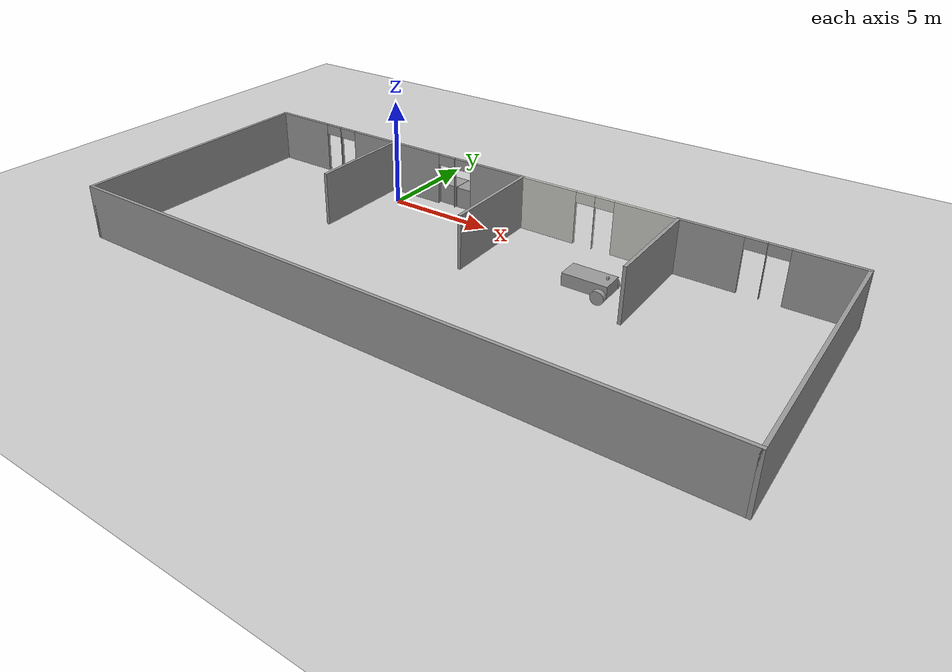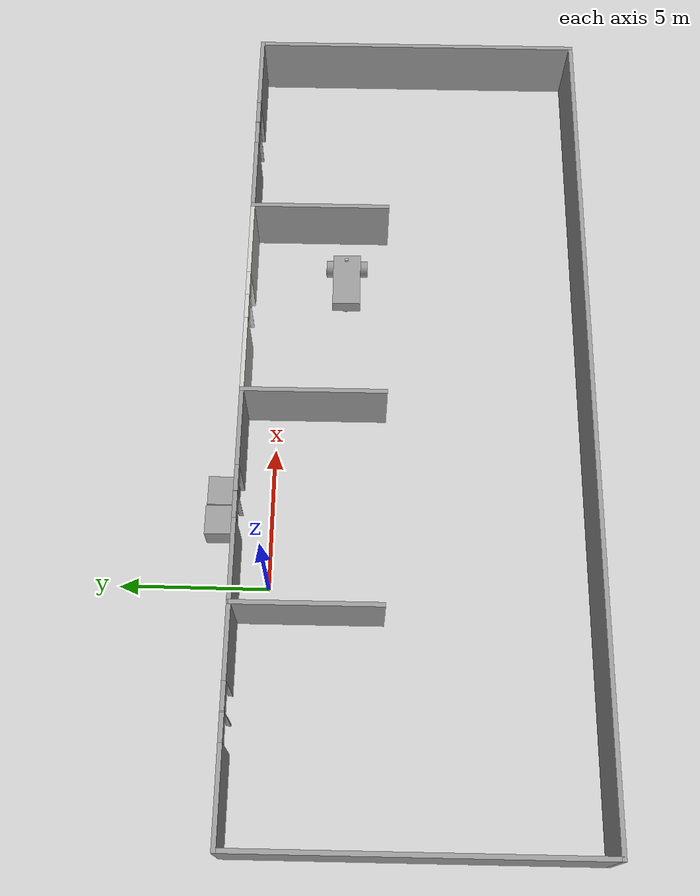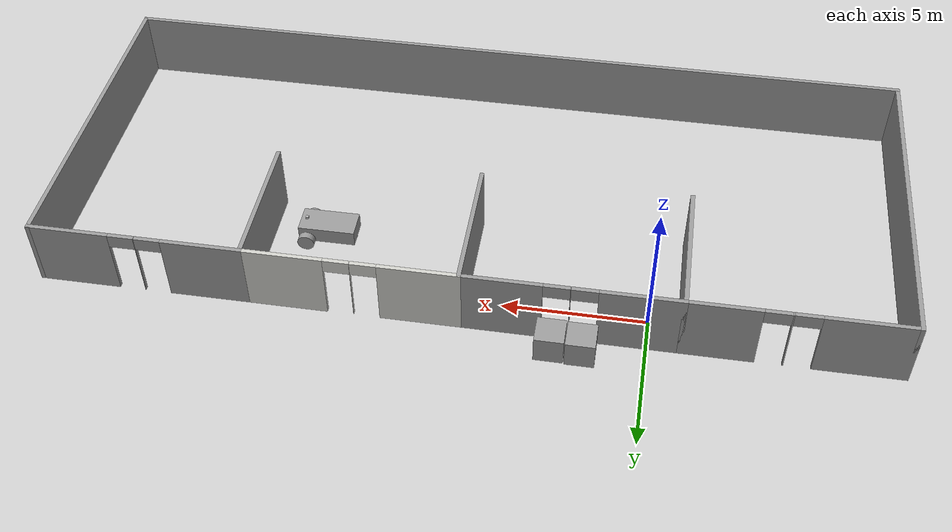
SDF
<sdf version="1.7">
 <world name="default">
  <model name="ground_plane">
   <static>1</static>
   <link name="link">
    <collision name="collision">
     <geometry><plane><normal>0 0 1</normal><size>100 100</size></plane></geometry>
     <surface><friction><ode><mu>100</mu><mu2>50</mu2></ode></friction></surface>
    </collision>
    <visual name="visual">
     <cast_shadows>0</cast_shadows>
     <geometry><plane><normal>0 0 1</normal><size>100 100</size></plane></geometry>
     <material>
      <script><uri>file://media/materials/scripts/gazebo.material</uri><name>Gazebo/Grey</name></script>
     </material>
    </visual>
   </link>
  </model>
  <model name="gf_simulation">
   <pose>6.27403 -4.82777 0 0 0 -3.13859</pose>
   <link name="Wall_1">
    <pose>-3.675 -5.925 0 0 -0 0</pose>
    <visual name="Wall_1_Visual_0">
     <pose>-2.30795 0 1.25 0 -0 0</pose>
     <geometry><box><size>2.8841 0.15 2.5</size></box></geometry>
     <material>
      <script><uri>file://media/materials/scripts/gazebo.material</uri><name>Gazebo/CeilingTiled</name></script>
      <ambient>1 1 1 1</ambient>
     </material>
     <meta><layer>0</layer></meta>
    </visual>
    <collision name="Wall_1_Collision_0">
     <geometry><box><size>2.8841 0.15 2.5</size></box></geometry>
     <pose>-2.30795 0 1.25 0 -0 0</pose>
    </collision>
    <visual name="Wall_1_Visual_1">
     <pose>0.038466 0 1.25 0 -0 0</pose>
     <geometry><box><size>0.008729 0.15 2.5</size></box></geometry>
     <material>
      <script><uri>file://media/materials/scripts/gazebo.material</uri><name>Gazebo/CeilingTiled</name></script>
      <ambient>1 1 1 1</ambient>
     </material>
     <meta><layer>0</layer></meta>
    </visual>
    <collision name="Wall_1_Collision_1">
     <geometry><box><size>0.008729 0.15 2.5</size></box></geometry>
     <pose>0.038466 0 1.25 0 -0 0</pose>
    </collision>
    <visual name="Wall_1_Visual_2">
     <pose>2.34641 0 1.25 0 -0 0</pose>
     <geometry><box><size>2.80717 0.15 2.5</size></box></geometry>
     <material>
      <script><uri>file://media/materials/scripts/gazebo.material</uri><name>Gazebo/CeilingTiled</name></script>
      <ambient>1 1 1 1</ambient>
     </material>
     <meta><layer>0</layer></meta>
    </visual>
    <collision name="Wall_1_Collision_2">
     <geometry><box><size>2.80717 0.15 2.5</size></box></geometry>
     <pose>2.34641 0 1.25 0 -0 0</pose>
    </collision>
    <visual name="Wall_1_Visual_3">
     <pose>-0.415899 0 2.25 0 -0 0</pose>
     <geometry><box><size>0.9 0.15 0.5</size></box></geometry>
     <material>
      <script><uri>file://media/materials/scripts/gazebo.material</uri><name>Gazebo/CeilingTiled</name></script>
      <ambient>1 1 1 1</ambient>
     </material>
     <meta><layer>0</layer></meta>
    </visual>
    <collision name="Wall_1_Collision_3">
     <geometry><box><size>0.9 0.15 0.5</size></box></geometry>
     <pose>-0.415899 0 2.25 0 -0 0</pose>
    </collision>
    <visual name="Wall_1_Visual_4">
     <pose>0.49283 0 2.25 0 -0 0</pose>
     <geometry><box><size>0.9 0.15 0.5</size></box></geometry>
     <material>
      <script><uri>file://media/materials/scripts/gazebo.material</uri><name>Gazebo/CeilingTiled</name></script>
      <ambient>1 1 1 1</ambient>
     </material>
     <meta><layer>0</layer></meta>
    </visual>
    <collision name="Wall_1_Collision_4">
     <geometry><box><size>0.9 0.15 0.5</size></box></geometry>
     <pose>0.49283 0 2.25 0 -0 0</pose>
    </collision>
   </link>
   <link name="Wall_10">
    <pose>3.675 -5.925 0 0 -0 0</pose>
    <visual name="Wall_10_Visual_0">
     <pose>-2.33475 0 1.25 0 -0 0</pose>
     <geometry><box><size>2.83049 0.15 2.5</size></box></geometry>
     <material>
      <script><uri>file://media/materials/scripts/gazebo.material</uri><name>Gazebo/Grey</name></script>
      <ambient>1 1 1 1</ambient>
     </material>
     <meta><layer>0</layer></meta>
    </visual>
    <collision name="Wall_10_Collision_0">
     <geometry><box><size>2.83049 0.15 2.5</size></box></geometry>
     <pose>-2.33475 0 1.25 0 -0 0</pose>
    </collision>
    <visual name="Wall_10_Visual_1">
     <pose>-0.009967 0 1.25 0 -0 0</pose>
     <geometry><box><size>0.019079 0.15 2.5</size></box></geometry>
     <material>
      <script><uri>file://media/materials/scripts/gazebo.material</uri><name>Gazebo/Grey</name></script>
      <ambient>1 1 1 1</ambient>
     </material>
     <meta><layer>0</layer></meta>
    </visual>
    <collision name="Wall_10_Collision_1">
     <geometry><box><size>0.019079 0.15 2.5</size></box></geometry>
     <pose>-0.009967 0 1.25 0 -0 0</pose>
    </collision>
    <visual name="Wall_10_Visual_2">
     <pose>2.32479 0 1.25 0 -0 0</pose>
     <geometry><box><size>2.85043 0.15 2.5</size></box></geometry>
     <material>
      <script><uri>file://media/materials/scripts/gazebo.material</uri><name>Gazebo/Grey</name></script>
      <ambient>1 1 1 1</ambient>
     </material>
     <meta><layer>0</layer></meta>
    </visual>
    <collision name="Wall_10_Collision_2">
     <geometry><box><size>2.85043 0.15 2.5</size></box></geometry>
     <pose>2.32479 0 1.25 0 -0 0</pose>
    </collision>
    <visual name="Wall_10_Visual_3">
     <pose>-0.469506 0 2.25 0 -0 0</pose>
     <geometry><box><size>0.9 0.15 0.5</size></box></geometry>
     <material>
      <script><uri>file://media/materials/scripts/gazebo.material</uri><name>Gazebo/Grey</name></script>
      <ambient>1 1 1 1</ambient>
     </material>
     <meta><layer>0</layer></meta>
    </visual>
    <collision name="Wall_10_Collision_3">
     <geometry><box><size>0.9 0.15 0.5</size></box></geometry>
     <pose>-0.469506 0 2.25 0 -0 0</pose>
    </collision>
    <visual name="Wall_10_Visual_4">
     <pose>0.449573 0 2.25 0 -0 0</pose>
     <geometry><box><size>0.9 0.15 0.5</size></box></geometry>
     <material>
      <script><uri>file://media/materials/scripts/gazebo.material</uri><name>Gazebo/Grey</name></script>
      <ambient>1 1 1 1</ambient>
     </material>
     <meta><layer>0</layer></meta>
    </visual>
    <collision name="Wall_10_Collision_4">
     <geometry><box><size>0.9 0.15 0.5</size></box></geometry>
     <pose>0.449573 0 2.25 0 -0 0</pose>
    </collision>
   </link>
   <link name="Wall_13">
    <collision name="Wall_13_Collision">
     <geometry><box><size>5 0.15 2.5</size></box></geometry>
     <pose>0 0 1.25 0 -0 0</pose>
    </collision>
    <visual name="Wall_13_Visual">
     <pose>0 0 1.25 0 -0 0</pose>
     <geometry><box><size>5 0.15 2.5</size></box></geometry>
     <material>
      <script><uri>file://media/materials/scripts/gazebo.material</uri><name>Gazebo/Grey</name></script>
      <ambient>1 1 1 1</ambient>
     </material>
     <meta><layer>0</layer></meta>
    </visual>
    <pose>7.35 -3.5 0 0 -0 1.5708</pose>
   </link>
   <link name="Wall_16">
    <pose>11.025 -5.925 0 0 -0 0</pose>
    <visual name="Wall_16_Visual_0">
     <pose>-2.47856 0 1.25 0 -0 0</pose>
     <geometry><box><size>2.54289 0.15 2.5</size></box></geometry>
     <material>
      <script><uri>file://media/materials/scripts/gazebo.material</uri><name>Gazebo/Grey</name></script>
      <ambient>1 1 1 1</ambient>
     </material>
     <meta><layer>0</layer></meta>
    </visual>
    <collision name="Wall_16_Collision_0">
     <geometry><box><size>2.54289 0.15 2.5</size></box></geometry>
     <pose>-2.47856 0 1.25 0 -0 0</pose>
    </collision>
    <visual name="Wall_16_Visual_1">
     <pose>-0.285478 0 1.25 0 -0 0</pose>
     <geometry><box><size>0.043266 0.15 2.5</size></box></geometry>
     <material>
      <script><uri>file://media/materials/scripts/gazebo.material</uri><name>Gazebo/Grey</name></script>
      <ambient>1 1 1 1</ambient>
     </material>
     <meta><layer>0</layer></meta>
    </visual>
    <collision name="Wall_16_Collision_1">
     <geometry><box><size>0.043266 0.15 2.5</size></box></geometry>
     <pose>-0.285478 0 1.25 0 -0 0</pose>
    </collision>
    <visual name="Wall_16_Visual_2">
     <pose>2.19308 0 1.25 0 -0 0</pose>
     <geometry><box><size>3.11384 0.15 2.5</size></box></geometry>
     <material>
      <script><uri>file://media/materials/scripts/gazebo.material</uri><name>Gazebo/Grey</name></script>
      <ambient>1 1 1 1</ambient>
     </material>
     <meta><layer>0</layer></meta>
    </visual>
    <collision name="Wall_16_Collision_2">
     <geometry><box><size>3.11384 0.15 2.5</size></box></geometry>
     <pose>2.19308 0 1.25 0 -0 0</pose>
    </collision>
    <visual name="Wall_16_Visual_3">
     <pose>-0.757111 0 2.25 0 -0 0</pose>
     <geometry><box><size>0.9 0.15 0.5</size></box></geometry>
     <material>
      <script><uri>file://media/materials/scripts/gazebo.material</uri><name>Gazebo/Grey</name></script>
      <ambient>1 1 1 1</ambient>
     </material>
     <meta><layer>0</layer></meta>
    </visual>
    <collision name="Wall_16_Collision_3">
     <geometry><box><size>0.9 0.15 0.5</size></box></geometry>
     <pose>-0.757111 0 2.25 0 -0 0</pose>
    </collision>
    <visual name="Wall_16_Visual_4">
     <pose>0.186155 0 2.25 0 -0 0</pose>
     <geometry><box><size>0.9 0.15 0.5</size></box></geometry>
     <material>
      <script><uri>file://media/materials/scripts/gazebo.material</uri><name>Gazebo/Grey</name></script>
      <ambient>1 1 1 1</ambient>
     </material>
     <meta><layer>0</layer></meta>
    </visual>
    <collision name="Wall_16_Collision_4">
     <geometry><box><size>0.9 0.15 0.5</size></box></geometry>
     <pose>0.186155 0 2.25 0 -0 0</pose>
    </collision>
   </link>
   <link name="Wall_20">
    <collision name="Wall_20_Collision">
     <geometry><box><size>12 0.15 2.5</size></box></geometry>
     <pose>0 0 1.25 0 -0 0</pose>
    </collision>
    <visual name="Wall_20_Visual">
     <pose>0 0 1.25 0 -0 0</pose>
     <geometry><box><size>12 0.15 2.5</size></box></geometry>
     <material>
      <script><uri>file://media/materials/scripts/gazebo.material</uri><name>Gazebo/Grey</name></script>
      <ambient>1 1 1 1</ambient>
     </material>
     <meta><layer>0</layer></meta>
    </visual>
    <pose>14.7 0 0 0 -0 1.5708</pose>
   </link>
   <link name="Wall_22">
    <pose>-11.025 -5.925 0 0 -0 3.14159</pose>
    <visual name="Wall_22_Visual_0">
     <pose>-2.34634 0 1.25 0 -0 0</pose>
     <geometry><box><size>2.80732 0.15 2.5</size></box></geometry>
     <material>
      <script><uri>file://media/materials/scripts/gazebo.material</uri><name>Gazebo/Grey</name></script>
      <ambient>1 1 1 1</ambient>
     </material>
     <meta><layer>0</layer></meta>
    </visual>
    <collision name="Wall_22_Collision_0">
     <geometry><box><size>2.80732 0.15 2.5</size></box></geometry>
     <pose>-2.34634 0 1.25 0 -0 0</pose>
    </collision>
    <visual name="Wall_22_Visual_1">
     <pose>-0.033144 0 1.25 0 -0 0</pose>
     <geometry><box><size>0.019079 0.15 2.5</size></box></geometry>
     <material>
      <script><uri>file://media/materials/scripts/gazebo.material</uri><name>Gazebo/Grey</name></script>
      <ambient>1 1 1 1</ambient>
     </material>
     <meta><layer>0</layer></meta>
    </visual>
    <collision name="Wall_22_Collision_1">
     <geometry><box><size>0.019079 0.15 2.5</size></box></geometry>
     <pose>-0.033144 0 1.25 0 -0 0</pose>
    </collision>
    <visual name="Wall_22_Visual_2">
     <pose>2.3132 0 1.25 0 -0 0</pose>
     <geometry><box><size>2.8736 0.15 2.5</size></box></geometry>
     <material>
      <script><uri>file://media/materials/scripts/gazebo.material</uri><name>Gazebo/Grey</name></script>
      <ambient>1 1 1 1</ambient>
     </material>
     <meta><layer>0</layer></meta>
    </visual>
    <collision name="Wall_22_Collision_2">
     <geometry><box><size>2.8736 0.15 2.5</size></box></geometry>
     <pose>2.3132 0 1.25 0 -0 0</pose>
    </collision>
    <visual name="Wall_22_Visual_3">
     <pose>-0.492683 0 2.25 0 -0 0</pose>
     <geometry><box><size>0.9 0.15 0.5</size></box></geometry>
     <material>
      <script><uri>file://media/materials/scripts/gazebo.material</uri><name>Gazebo/Grey</name></script>
      <ambient>1 1 1 1</ambient>
     </material>
     <meta><layer>0</layer></meta>
    </visual>
    <collision name="Wall_22_Collision_3">
     <geometry><box><size>0.9 0.15 0.5</size></box></geometry>
     <pose>-0.492683 0 2.25 0 -0 0</pose>
    </collision>
    <visual name="Wall_22_Visual_4">
     <pose>0.426395 0 2.25 0 -0 0</pose>
     <geometry><box><size>0.9 0.15 0.5</size></box></geometry>
     <material>
      <script><uri>file://media/materials/scripts/gazebo.material</uri><name>Gazebo/Grey</name></script>
      <ambient>1 1 1 1</ambient>
     </material>
     <meta><layer>0</layer></meta>
    </visual>
    <collision name="Wall_22_Collision_4">
     <geometry><box><size>0.9 0.15 0.5</size></box></geometry>
     <pose>0.426395 0 2.25 0 -0 0</pose>
    </collision>
   </link>
   <link name="Wall_23">
    <collision name="Wall_23_Collision">
     <geometry><box><size>12 0.15 2.5</size></box></geometry>
     <pose>0 0 1.25 0 -0 0</pose>
    </collision>
    <visual name="Wall_23_Visual">
     <pose>0 0 1.25 0 -0 0</pose>
     <geometry><box><size>12 0.15 2.5</size></box></geometry>
     <material>
      <script><uri>file://media/materials/scripts/gazebo.material</uri><name>Gazebo/Grey</name></script>
      <ambient>1 1 1 1</ambient>
     </material>
     <meta><layer>0</layer></meta>
    </visual>
    <pose>-14.7 0 0 0 -0 1.5708</pose>
   </link>
   <link name="Wall_24">
    <collision name="Wall_24_Collision">
     <geometry><box><size>29.55 0.15 2.5</size></box></geometry>
     <pose>0 0 1.25 0 -0 0</pose>
    </collision>
    <visual name="Wall_24_Visual">
     <pose>0 0 1.25 0 -0 0</pose>
     <geometry><box><size>29.55 0.15 2.5</size></box></geometry>
     <material>
      <script><uri>file://media/materials/scripts/gazebo.material</uri><name>Gazebo/Grey</name></script>
      <ambient>1 1 1 1</ambient>
     </material>
     <meta><layer>0</layer></meta>
    </visual>
    <pose>0 5.925 0 0 -0 0</pose>
   </link>
   <link name="Wall_3">
    <collision name="Wall_3_Collision">
     <geometry><box><size>5 0.15 2.5</size></box></geometry>
     <pose>0 0 1.25 0 -0 0</pose>
    </collision>
    <visual name="Wall_3_Visual">
     <pose>0 0 1.25 0 -0 0</pose>
     <geometry><box><size>5 0.15 2.5</size></box></geometry>
     <material>
      <script><uri>file://media/materials/scripts/gazebo.material</uri><name>Gazebo/Grey</name></script>
      <ambient>1 1 1 1</ambient>
     </material>
     <meta><layer>0</layer></meta>
    </visual>
    <pose>0 -3.5 0 0 -0 1.5708</pose>
   </link>
   <link name="Wall_7">
    <collision name="Wall_7_Collision">
     <geometry><box><size>5 0.15 2.5</size></box></geometry>
     <pose>0 0 1.25 0 -0 0</pose>
    </collision>
    <visual name="Wall_7_Visual">
     <pose>0 0 1.25 0 -0 0</pose>
     <geometry><box><size>5 0.15 2.5</size></box></geometry>
     <material>
      <script><uri>file://media/materials/scripts/gazebo.material</uri><name>Gazebo/Grey</name></script>
      <ambient>1 1 1 1</ambient>
     </material>
     <meta><layer>0</layer></meta>
    </visual>
    <pose>-7.35 -3.5 0 0 -0 1.5708</pose>
   </link>
   <static>1</static>
  </model>
  <model name="unit_box">
   <pose>2.10367 1.70046 0.499995 0 -1e-05 0</pose>
   <link name="link">
    <inertial>
     <mass>1</mass>
     <inertia>
      <ixx>0.166667</ixx>
      <ixy>0</ixy>
      <ixz>0</ixz>
      <iyy>0.166667</iyy>
      <iyz>0</iyz>
      <izz>0.166667</izz>
     </inertia>
    </inertial>
    <collision name="collision"><geometry><box><size>1 1 1</size></box></geometry></collision>
    <visual name="visual">
     <geometry><box><size>1 1 1</size></box></geometry>
     <material>
      <script><name>Gazebo/Grey</name><uri>file://media/materials/scripts/gazebo.material</uri></script>
     </material>
    </visual>
   </link>
  </model>
  <model name="unit_box_0">
   <pose>3.13442 1.66607 0.499995 1e-05 -0 5e-06</pose>
   <link name="link">
    <inertial>
     <mass>1</mass>
     <inertia>
      <ixx>0.166667</ixx>
      <ixy>0</ixy>
      <ixz>0</ixz>
      <iyy>0.166667</iyy>
      <iyz>0</iyz>
      <izz>0.166667</izz>
     </inertia>
    </inertial>
    <collision name="collision"><geometry><box><size>1 1 1</size></box></geometry></collision>
    <visual name="visual">
     <geometry><box><size>1 1 1</size></box></geometry>
     <material>
      <script><name>Gazebo/Grey</name><uri>file://media/materials/scripts/gazebo.material</uri></script>
     </material>
    </visual>
   </link>
  </model>
  <model name="follower_vehicle">
   <pose>11.7077 -2.31727 0.325007 2e-06 -7e-06 0.006706</pose>
   <link name="chassis">
    <pose>-0.151427 -0 0.175 0 -0 0</pose>
    <inertial>
     <mass>1.14395</mass>
     <inertia>
      <ixx>0.126164</ixx>
      <ixy>0</ixy>
      <ixz>0</ixz>
      <iyy>0.416519</iyy>
      <iyz>0</iyz>
      <izz>0.481014</izz>
     </inertia>
    </inertial>
    <visual name="visual">
     <geometry><box><size>2.01142 1 0.568726</size></box></geometry>
     <material>
      <script><uri>file://media/materials/scripts/gazebo.material</uri><name>Gazebo/Grey</name></script>
     </material>
    </visual>
    <collision name="collision">
     <geometry><box><size>2.01142 1 0.568726</size></box></geometry>
     <surface>
      <friction><ode><mu>1</mu><mu2>1</mu2><fdir1>0 0 0</fdir1><slip1>0</slip1><slip2>0</slip2></ode></friction>
      <bounce><restitution_coefficient>0</restitution_coefficient><threshold>1e+06</threshold></bounce>
      <contact>
       <collide_without_contact>0</collide_without_contact>
       <collide_without_contact_bitmask>1</collide_without_contact_bitmask>
       <collide_bitmask>1</collide_bitmask>
       <ode>
        <soft_cfm>0</soft_cfm>
        <soft_erp>0.2</soft_erp>
        <kp>1e+13</kp>
        <kd>1</kd>
        <max_vel>0.01</max_vel>
        <min_depth>0</min_depth>
       </ode>
      </contact>
     </surface>
    </collision>
   </link>
   <link name="wheel_1">
    <pose>0.554283 0.625029 -0.025 1.5707 -0 0</pose>
    <inertial>
     <mass>2</mass>
     <inertia><ixx>0.145833</ixx><ixy>0</ixy><ixz>0</ixz><iyy>0.145833</iyy><iyz>0</iyz><izz>0.125</izz></inertia>
    </inertial>
    <visual name="visual">
     <geometry><cylinder><radius>0.3</radius><length>0.25</length></cylinder></geometry>
     <material>
      <script><uri>file://media/materials/scripts/gazebo.material</uri><name>Gazebo/Grey</name></script>
     </material>
    </visual>
    <collision name="collision">
     <geometry><cylinder><radius>0.3</radius><length>0.25</length></cylinder></geometry>
     <surface>
      <friction><ode><mu>1</mu><mu2>1</mu2><fdir1>0 0 0</fdir1><slip1>0</slip1><slip2>0</slip2></ode></friction>
      <bounce><restitution_coefficient>0</restitution_coefficient><threshold>1e+06</threshold></bounce>
      <contact>
       <collide_without_contact>0</collide_without_contact>
       <collide_without_contact_bitmask>1</collide_without_contact_bitmask>
       <collide_bitmask>1</collide_bitmask>
       <ode>
        <soft_cfm>0</soft_cfm>
        <soft_erp>0.2</soft_erp>
        <kp>1e+13</kp>
        <kd>1</kd>
        <max_vel>0.01</max_vel>
        <min_depth>0</min_depth>
       </ode>
      </contact>
     </surface>
    </collision>
   </link>
   <link name="wheel_2">
    <pose>0.554282 -0.625029 -0.025 1.5707 -0 0</pose>
    <inertial>
     <mass>2</mass>
     <inertia><ixx>0.145833</ixx><ixy>0</ixy><ixz>0</ixz><iyy>0.145833</iyy><iyz>0</iyz><izz>0.125</izz></inertia>
    </inertial>
    <visual name="visual">
     <geometry><cylinder><radius>0.3</radius><length>0.25</length></cylinder></geometry>
     <material>
      <script><uri>file://media/materials/scripts/gazebo.material</uri><name>Gazebo/Grey</name></script>
     </material>
    </visual>
    <collision name="collision">
     <geometry><cylinder><radius>0.3</radius><length>0.25</length></cylinder></geometry>
     <surface>
      <friction><ode><mu>1</mu><mu2>1</mu2><fdir1>0 0 0</fdir1><slip1>0</slip1><slip2>0</slip2></ode></friction>
      <bounce><restitution_coefficient>0</restitution_coefficient><threshold>1e+06</threshold></bounce>
      <contact>
       <collide_without_contact>0</collide_without_contact>
       <collide_without_contact_bitmask>1</collide_without_contact_bitmask>
       <collide_bitmask>1</collide_bitmask>
       <ode>
        <soft_cfm>0</soft_cfm>
        <soft_erp>0.2</soft_erp>
        <kp>1e+13</kp>
        <kd>1</kd>
        <max_vel>0.01</max_vel>
        <min_depth>0</min_depth>
       </ode>
      </contact>
     </surface>
    </collision>
   </link>
   <link name="caster">
    <pose>-0.957138 -0 -0.125 0 -0 0</pose>
    <inertial>
     <mass>1</mass>
     <inertia><ixx>0.1</ixx><ixy>0</ixy><ixz>0</ixz><iyy>0.1</iyy><iyz>0</iyz><izz>0.1</izz></inertia>
    </inertial>
    <visual name="visual">
     <geometry><sphere><radius>0.2</radius></sphere></geometry>
     <material>
      <script><uri>file://media/materials/scripts/gazebo.material</uri><name>Gazebo/Grey</name></script>
     </material>
    </visual>
    <collision name="collision">
     <geometry><sphere><radius>0.2</radius></sphere></geometry>
     <surface>
      <friction><ode><mu>1</mu><mu2>1</mu2><fdir1>0 0 0</fdir1><slip1>0</slip1><slip2>0</slip2></ode></friction>
      <bounce><restitution_coefficient>0</restitution_coefficient><threshold>1e+06</threshold></bounce>
      <contact>
       <collide_without_contact>0</collide_without_contact>
       <collide_without_contact_bitmask>1</collide_without_contact_bitmask>
       <collide_bitmask>1</collide_bitmask>
       <ode>
        <soft_cfm>0</soft_cfm>
        <soft_erp>0.2</soft_erp>
        <kp>1e+13</kp>
        <kd>1</kd>
        <max_vel>0.01</max_vel>
        <min_depth>0</min_depth>
       </ode>
      </contact>
     </surface>
    </collision>
   </link>
   <model name="depth_camera">
    <link name="link">
     <pose>0.05 0.05 0.05 0 -0 0</pose>
     <inertial>
      <mass>0.1</mass>
      <inertia>
       <ixx>0.000166667</ixx>
       <iyy>0.000166667</iyy>
       <izz>0.000166667</izz>
       <ixy>0</ixy>
       <ixz>0</ixz>
       <iyz>0</iyz>
      </inertia>
     </inertial>
     <collision name="collision"><geometry><box><size>0.1 0.1 0.1</size></box></geometry></collision>
     <visual name="visual"><geometry><box><size>0.1 0.1 0.1</size></box></geometry></visual>
     <sensor name="camera" type="depth">
      <camera name="depth">
       <horizontal_fov>1.047</horizontal_fov>
       <image><width>320</width><height>240</height></image>
       <clip><near>0.1</near><far>100</far></clip>
      </camera>
      <always_on>1</always_on>
      <update_rate>30</update_rate>
      <visualize>1</visualize>
     </sensor>
    </link>
    <pose>0.569632 -0.03223 0.502056 0 -0 0</pose>
   </model>
   <joint name="chassis_wheel_1_revolute" type="revolute">
    <parent>chassis</parent>
    <child>wheel_1</child>
    <axis>
     <xyz>0 0 1</xyz>
     <limit>
      <lower>-1.79769e+308</lower>
      <upper>1.79769e+308</upper>
      <effort>-1</effort>
      <velocity>-1</velocity>
     </limit>
     <dynamics>
      <spring_reference>0</spring_reference>
      <spring_stiffness>0</spring_stiffness>
      <damping>0</damping>
      <friction>0</friction>
     </dynamics>
    </axis>
    <physics>
     <ode><limit><cfm>0</cfm><erp>0.2</erp></limit><suspension><cfm>0</cfm><erp>0.2</erp></suspension></ode>
    </physics>
   </joint>
   <joint name="chassis_wheel_2_revolute" type="revolute">
    <parent>chassis</parent>
    <child>wheel_2</child>
    <axis>
     <xyz>0 0 1</xyz>
     <limit>
      <lower>-1.79769e+308</lower>
      <upper>1.79769e+308</upper>
      <effort>-1</effort>
      <velocity>-1</velocity>
     </limit>
     <dynamics>
      <spring_reference>0</spring_reference>
      <spring_stiffness>0</spring_stiffness>
      <damping>0</damping>
      <friction>0</friction>
     </dynamics>
    </axis>
    <physics>
     <ode><limit><cfm>0</cfm><erp>0.2</erp></limit><suspension><cfm>0</cfm><erp>0.2</erp></suspension></ode>
    </physics>
   </joint>
   <joint name="chassis_caster_ball" type="ball">
    <parent>chassis</parent>
    <child>caster</child>
    <physics>
     <ode><limit><cfm>0</cfm><erp>0.2</erp></limit><suspension><cfm>0</cfm><erp>0.2</erp></suspension></ode>
    </physics>
   </joint>
   <joint name="chassis_depth_camera_link_fixed" type="fixed">
    <parent>chassis</parent>
    <child>depth_camera::link</child>
    <physics>
     <ode><limit><cfm>0</cfm><erp>0.2</erp></limit><suspension><cfm>0</cfm><erp>0.2</erp></suspension></ode>
    </physics>
   </joint>
   <static>0</static>
   <plugin name="follower" filename="libFollowerPlugin.so"/>
  </model>
 </world>
</sdf>
